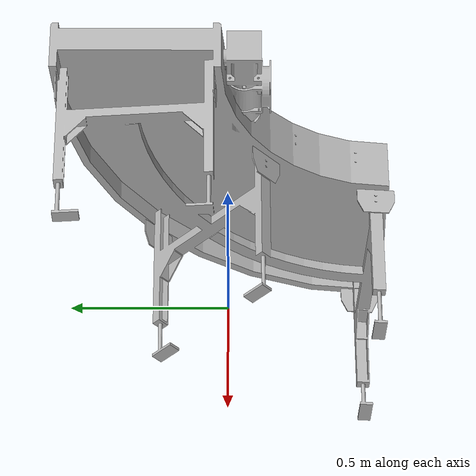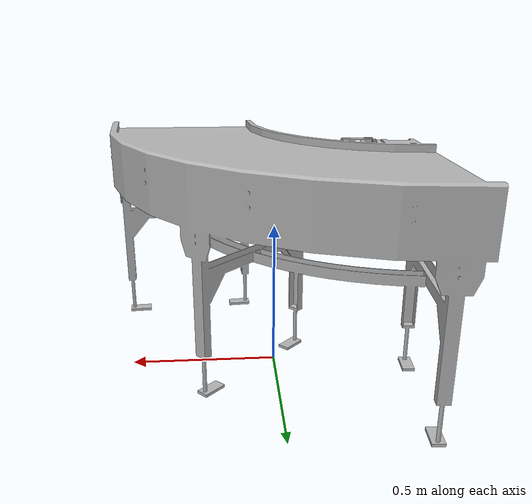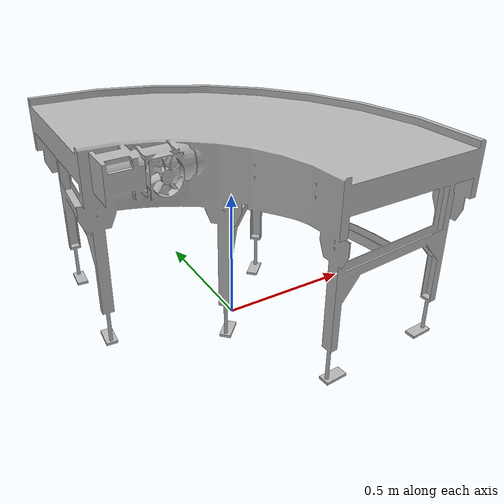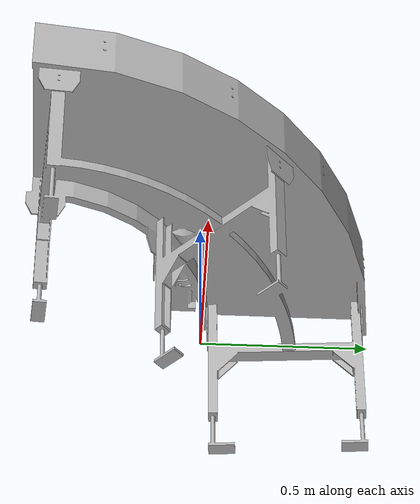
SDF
<?xml version="1.0" ?>
<sdf version="1.6">
  <model name="right_1m">
    <static>false</static>
    <link name="link">
      <collision name="collision">
        <!-- Offset applied here to align feet to ground -->
        <pose>0 0 0.597456 0 0 0</pose>
        <geometry>
          <mesh>
            <uri>model://right_1m/meshes/col_right_1m.obj</uri>
            <scale>1 1 1</scale>
          </mesh>
        </geometry>
      </collision>

      <visual name="visual">
        <!-- Offset applied here to align feet to ground -->
        <pose>0 0 0.597456 0 0 0</pose>
        <geometry>
          <mesh>
            <uri>model://right_1m/meshes/right_1m.obj</uri>
            <scale>1 1 1</scale>
          </mesh>
        </geometry>
      </visual>
    </link>
  </model>
</sdf>
